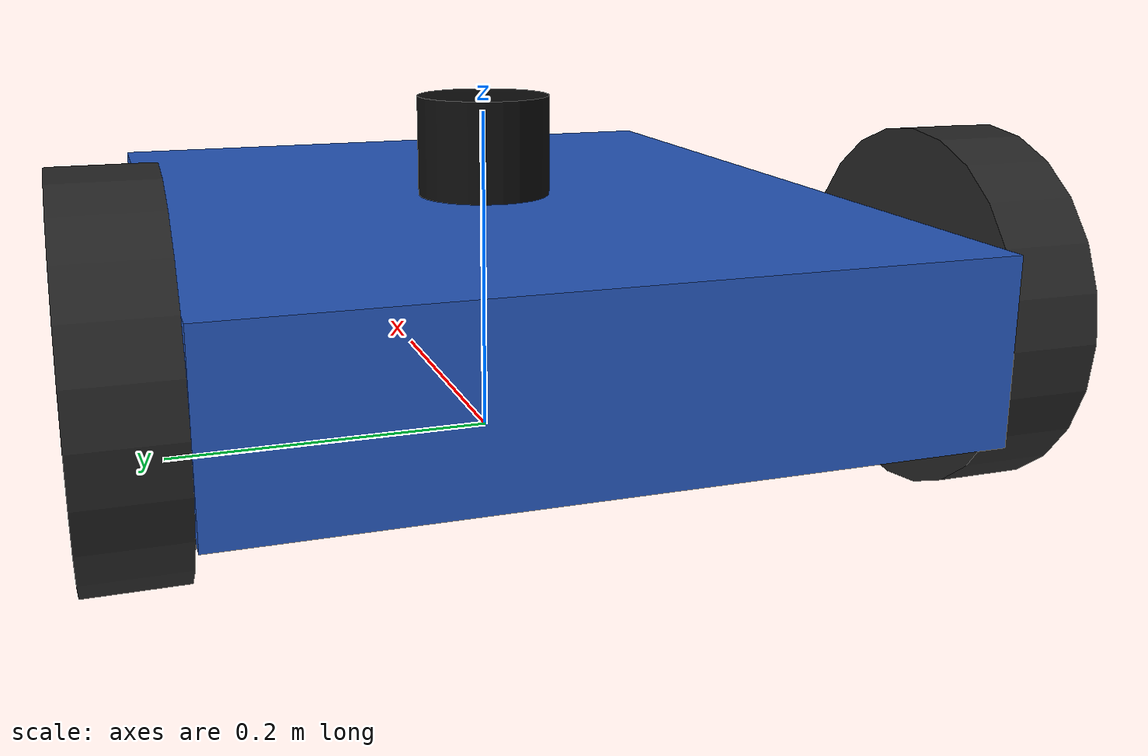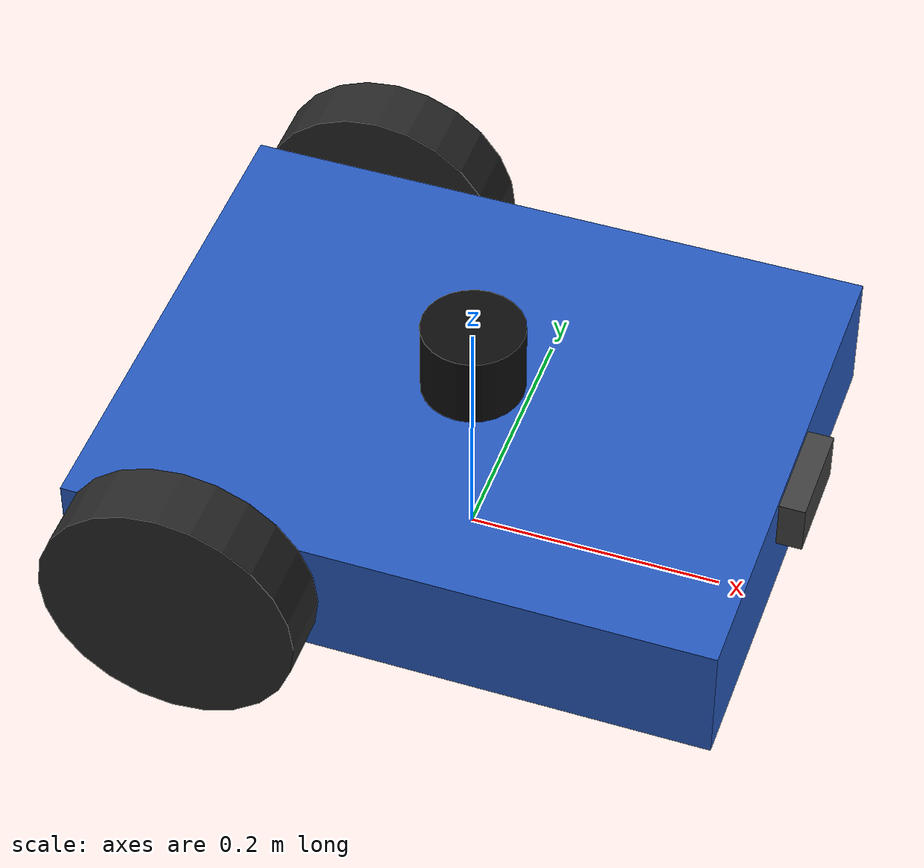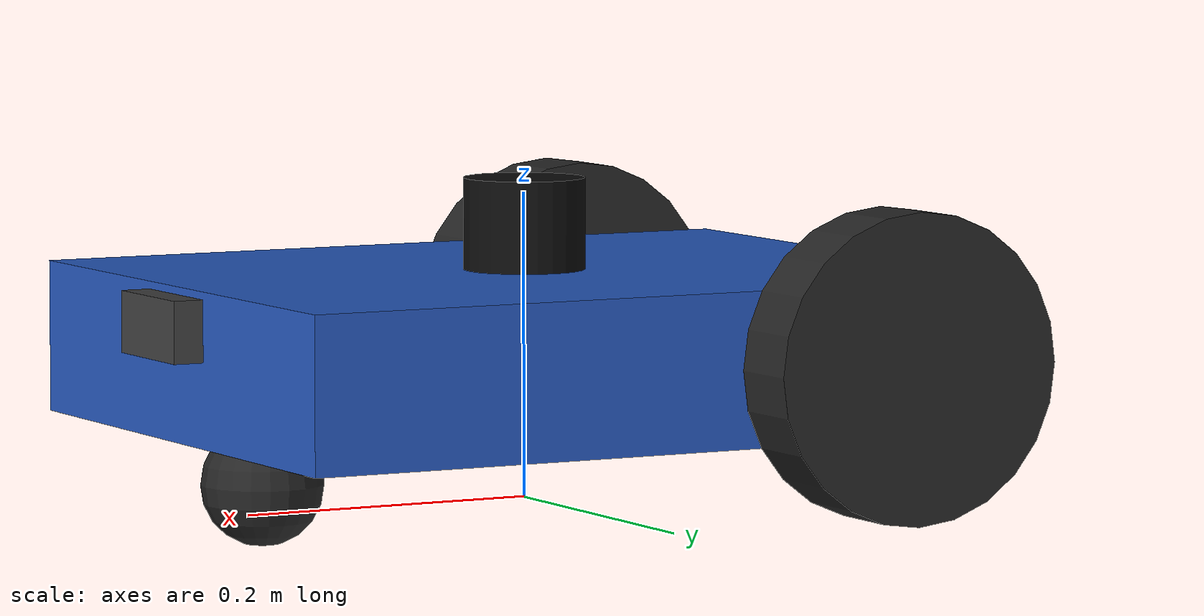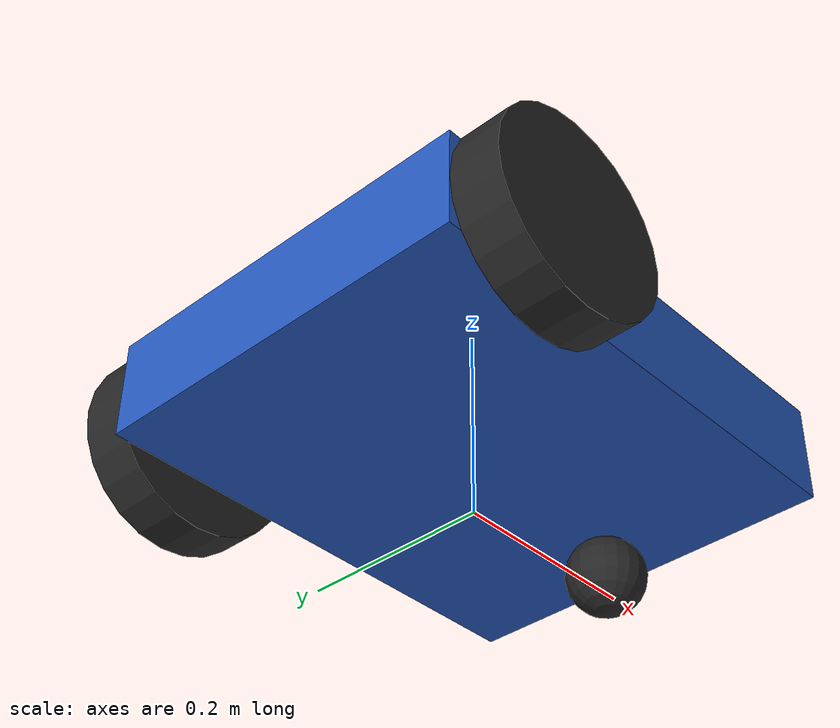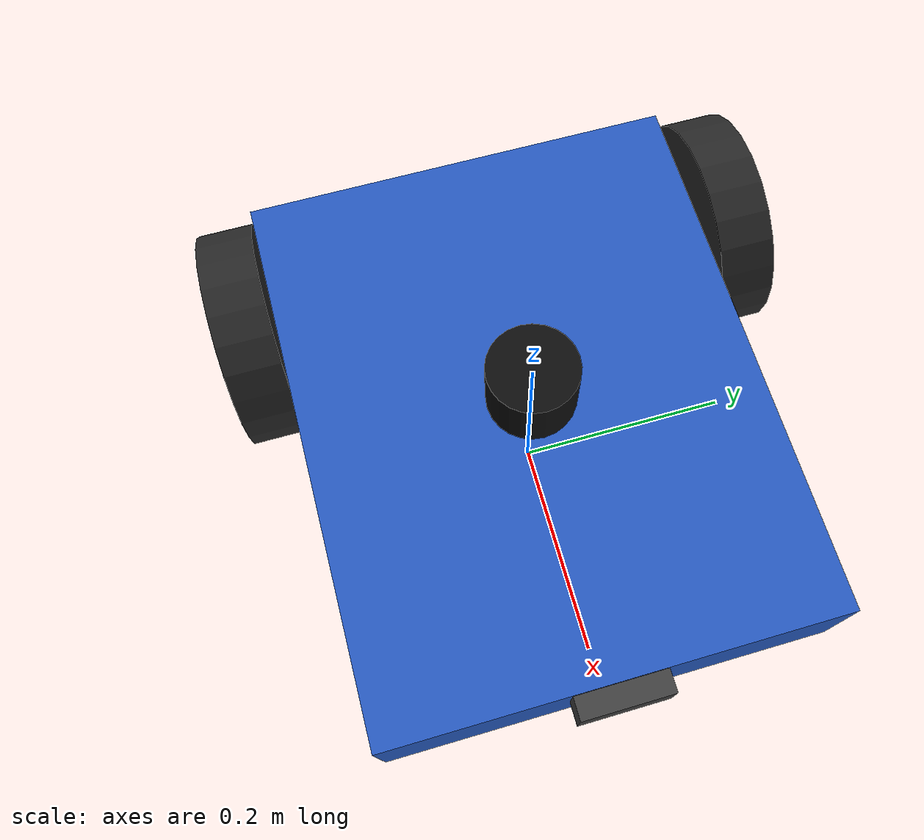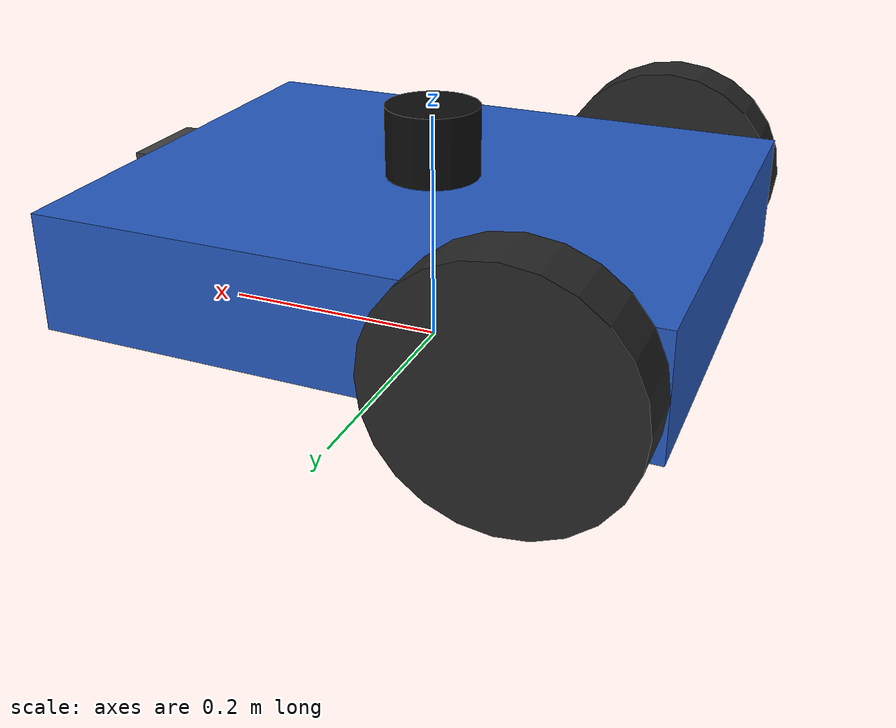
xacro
<?xml version="1.0"?>
<robot xmlns:xacro="http://www.ros.org/wiki/xacro" name="amr_robot">

  <!-- ============================================================
       PROPERTIES — change dimensions here, everything updates
       ============================================================ -->
  <xacro:property name="base_mass"       value="15.0"/>
  <xacro:property name="base_length"     value="0.5"/>
  <xacro:property name="base_width"      value="0.4"/>
  <xacro:property name="base_height"     value="0.1"/>

  <xacro:property name="wheel_mass"      value="0.8"/>
  <xacro:property name="wheel_radius"    value="0.1"/>
  <xacro:property name="wheel_width"     value="0.05"/>
  <xacro:property name="wheel_sep"       value="0.45"/>   <!-- distance between wheel centres -->

  <xacro:property name="caster_radius"   value="0.04"/>

  <xacro:macro name="box_inertia" params="m x y z">
    <inertial>
      <mass value="${m}"/>
      <inertia
        ixx="${m/12.0*(y*y+z*z)}" ixy="0.0" ixz="0.0"
        iyy="${m/12.0*(x*x+z*z)}" iyz="0.0"
        izz="${m/12.0*(x*x+y*y)}"/>
    </inertial>
  </xacro:macro>

  <xacro:macro name="cylinder_inertia" params="m r h">
    <inertial>
      <mass value="${m}"/>
      <inertia
        ixx="${m/12.0*(3*r*r+h*h)}" ixy="0.0" ixz="0.0"
        iyy="${m/12.0*(3*r*r+h*h)}" iyz="0.0"
        izz="${m/2.0*r*r}"/>
    </inertial>
  </xacro:macro>

  <xacro:macro name="sphere_inertia" params="m r">
    <inertial>
      <mass value="${m}"/>
      <inertia
        ixx="${2.0/5.0*m*r*r}" ixy="0.0" ixz="0.0"
        iyy="${2.0/5.0*m*r*r}" iyz="0.0"
        izz="${2.0/5.0*m*r*r}"/>
    </inertial>
  </xacro:macro>

  <link name="base_footprint"/>

  <joint name="base_joint" type="fixed">
    <parent link="base_footprint"/>
    <child  link="base_link"/>
    <origin xyz="0 0 ${wheel_radius}" rpy="0 0 0"/>
  </joint>

  <link name="base_link">
    <visual>
      <geometry>
        <box size="${base_length} ${base_width} ${base_height}"/>
      </geometry>
      <material name="blue">
        <color rgba="0.15 0.35 0.75 1.0"/>
      </material>
    </visual>
    <collision>
      <geometry>
        <box size="${base_length} ${base_width} ${base_height}"/>
      </geometry>
    </collision>
    <xacro:box_inertia m="${base_mass}" x="${base_length}" y="${base_width}" z="${base_height}"/>
  </link>

  <xacro:macro name="drive_wheel" params="prefix y_sign">

    <link name="${prefix}_wheel">
      <visual>
        <origin xyz="0 0 0" rpy="${pi/2} 0 0"/>
        <geometry>
          <cylinder radius="${wheel_radius}" length="${wheel_width}"/>
        </geometry>
        <material name="dark_gray">
          <color rgba="0.15 0.15 0.15 1.0"/>
        </material>
      </visual>
      <collision>
        <origin xyz="0 0 0" rpy="${pi/2} 0 0"/>
        <geometry>
          <sphere radius="${wheel_radius}"/>
        </geometry>
      </collision>
      <xacro:cylinder_inertia m="${wheel_mass}" r="${wheel_radius}" h="${wheel_width}"/>
    </link>

    <joint name="${prefix}_wheel_joint" type="continuous">
      <parent link="base_link"/>
      <child  link="${prefix}_wheel"/>
      <origin xyz="${-(base_length/2 - 0.1)} ${y_sign * wheel_sep/2} 0" rpy="0 0 0"/>
      <axis xyz="0 1 0"/>
    </joint>

  </xacro:macro>

  <xacro:drive_wheel prefix="left"  y_sign="1"/>
  <xacro:drive_wheel prefix="right" y_sign="-1"/>

  <xacro:macro name="caster" params="prefix x_pos">

    <link name="${prefix}_caster">
      <visual>
        <geometry>
          <sphere radius="${caster_radius}"/>
        </geometry>
        <material name="dark_gray">
          <color rgba="0.15 0.15 0.15 1.0"/>
        </material>
      </visual>
      <collision>
        <geometry>
          <sphere radius="${caster_radius}"/>
        </geometry>
      </collision>
      <xacro:sphere_inertia m="0.1" r="${caster_radius}"/>
    </link>

    <joint name="${prefix}_caster_joint" type="fixed">
      <parent link="base_link"/>
      <child  link="${prefix}_caster"/>
      <origin xyz="${x_pos} 0 ${-(base_height/2 + caster_radius - 0.01)}" rpy="0 0 0"/>
    </joint>

  </xacro:macro>

  <xacro:caster prefix="front" x_pos=" ${base_length/2 - 0.06}"/>

  <!-- ============================================================
       LIDAR — 2D 360° laser scanner on top of the robot body
       ============================================================ -->
  <link name="lidar_link">
    <visual>
      <geometry>
        <cylinder radius="0.04" length="0.06"/>
      </geometry>
      <material name="black">
        <color rgba="0.05 0.05 0.05 1.0"/>
      </material>
    </visual>
    <collision>
      <geometry>
        <cylinder radius="0.04" length="0.06"/>
      </geometry>
    </collision>
    <inertial>
      <mass value="0.1"/>
      <inertia ixx="0.001" ixy="0" ixz="0" iyy="0.001" iyz="0" izz="0.001"/>
    </inertial>
  </link>

  <joint name="lidar_joint" type="fixed">
    <parent link="base_link"/>
    <child  link="lidar_link"/>
    <origin xyz="0 0 ${base_height/2 + 0.03}" rpy="0 0 0"/>
  </joint>

  <link name="camera_link">
    <visual>
      <geometry>
        <box size="0.04 0.08 0.04"/>
      </geometry>
      <material name="dark_gray">
        <color rgba="0.25 0.25 0.25 1.0"/>
      </material>
    </visual>
    <collision>
      <geometry>
        <box size="0.04 0.08 0.04"/>
      </geometry>
    </collision>
    <inertial>
      <mass value="0.05"/>
      <inertia ixx="0.0001" ixy="0" ixz="0" iyy="0.0001" iyz="0" izz="0.0001"/>
    </inertial>
  </link>

  <joint name="camera_joint" type="fixed">
    <parent link="base_link"/>
    <child  link="camera_link"/>
    <origin xyz="${base_length/2} 0 ${base_height/4}" rpy="0 0 0"/>
  </joint>

  <link name="camera_optical_frame"/>
  <joint name="camera_optical_joint" type="fixed">
    <parent link="camera_link"/>
    <child  link="camera_optical_frame"/>
    <origin xyz="0 0 0" rpy="${-pi/2} 0 ${-pi/2}"/>
  </joint>

  <!-- ============================================================
       GAZEBO PLUGINS (Gazebo Harmonic / gz-sim 8)
       ============================================================ -->

  <!-- Differential drive controller
       Reads cmd_vel, drives left/right wheel joints, publishes odom + tf -->
  <gazebo>
    <plugin filename="gz-sim-diff-drive-system"
            name="gz::sim::systems::DiffDrive">
      <left_joint>left_wheel_joint</left_joint>
      <right_joint>right_wheel_joint</right_joint>
      <wheel_separation>${wheel_sep}</wheel_separation>
      <wheel_radius>${wheel_radius}</wheel_radius>
      <odom_publish_frequency>20</odom_publish_frequency>
      <topic>cmd_vel</topic>
      <odom_topic>odom</odom_topic>
      <tf_topic>tf</tf_topic>
      <frame_id>odom</frame_id>
      <child_frame_id>base_footprint</child_frame_id>
      <max_linear_acceleration>1.0</max_linear_acceleration>
    </plugin>
  </gazebo>

  <!-- Publishes wheel joint states so robot_state_publisher can update TF -->
  <gazebo>
    <plugin filename="gz-sim-joint-state-publisher-system"
            name="gz::sim::systems::JointStatePublisher">
      <joint_name>left_wheel_joint</joint_name>
      <joint_name>right_wheel_joint</joint_name>
      <topic>joint_states</topic>
    </plugin>
  </gazebo>

  <!-- Lidar sensor — gpu_lidar uses the render engine for ray casting (faster).
       Falls back to cpu_lidar if GPU unavailable — change type if needed. -->
  <gazebo reference="lidar_link">
    <sensor name="lidar" type="gpu_lidar">
      <topic>scan</topic>
      <update_rate>10</update_rate>
      <gz_frame_id>lidar_link</gz_frame_id>
      <lidar>
        <scan>
          <horizontal>
            <samples>360</samples>
            <resolution>1</resolution>
            <min_angle>-3.14159265</min_angle>
            <max_angle>3.14159265</max_angle>
          </horizontal>
        </scan>
        <range>
          <min>0.35</min>
          <max>12.0</max>
          <resolution>0.01</resolution>
        </range>
        <noise>
          <type>gaussian</type>
          <mean>0.0</mean>
          <stddev>0.01</stddev>
        </noise>
      </lidar>
      <always_on>true</always_on>
      <visualize>false</visualize>
    </sensor>
  </gazebo>

  <!-- RGB camera sensor -->
  <gazebo reference="camera_link">
    <sensor name="camera" type="camera">
      <topic>camera/image_raw</topic>
      <update_rate>30</update_rate>
      <gz_frame_id>camera_optical_frame</gz_frame_id>
      <camera>
        <horizontal_fov>1.047</horizontal_fov>  <!-- 60 degrees -->
        <image>
          <width>640</width>
          <height>480</height>
          <format>R8G8B8</format>
        </image>
        <clip>
          <near>0.1</near>
          <far>100.0</far>
        </clip>
      </camera>
      <always_on>true</always_on>
      <visualize>false</visualize>
    </sensor>
  </gazebo>

  <!-- Wheel-ground contact physics — high friction for traction -->
  <gazebo reference="left_wheel">
    <mu1>1.0</mu1>
    <mu2>1.0</mu2>
    <kp>1000000.0</kp>
    <kd>100.0</kd>
    <minDepth>0.001</minDepth>
  </gazebo>

  <gazebo reference="right_wheel">
    <mu1>1.0</mu1>
    <mu2>1.0</mu2>
    <kp>1000000.0</kp>
    <kd>100.0</kd>
    <minDepth>0.001</minDepth>
  </gazebo>

  <!-- Caster zero friction — lets them skid freely -->
  <gazebo reference="front_caster">
    <mu1>0.0</mu1>
    <mu2>0.0</mu2>
  </gazebo>

  <gazebo reference="rear_caster">
    <mu1>0.0</mu1>
    <mu2>0.0</mu2>
  </gazebo>

</robot>
